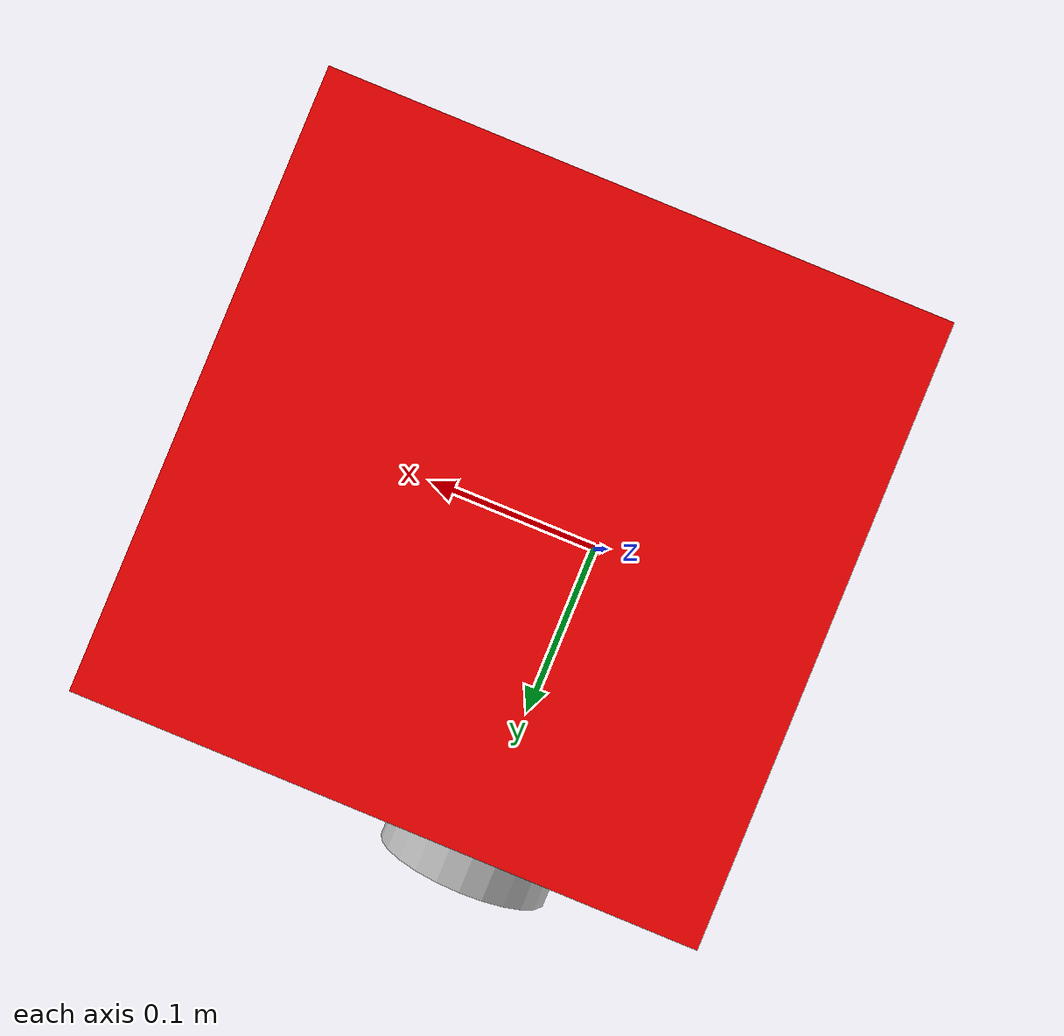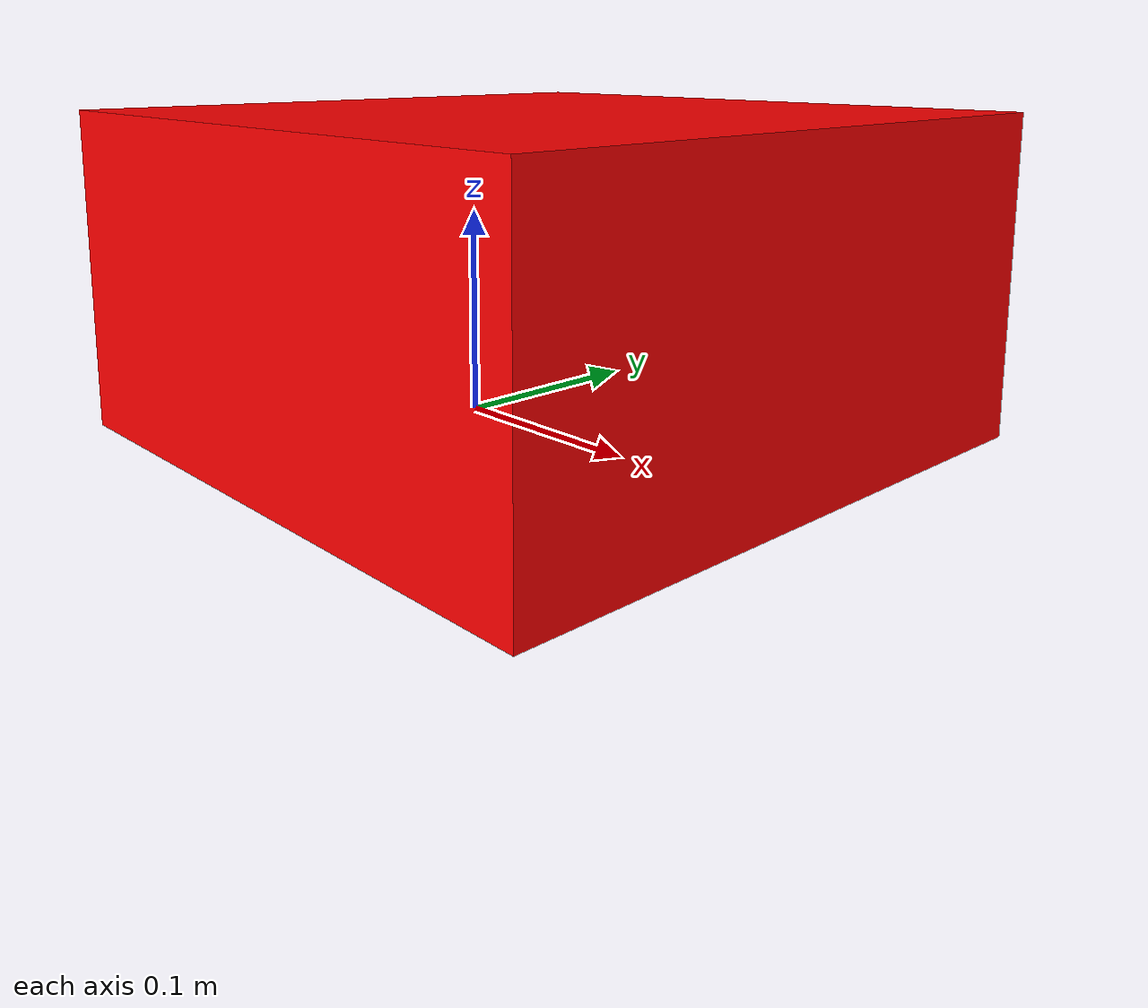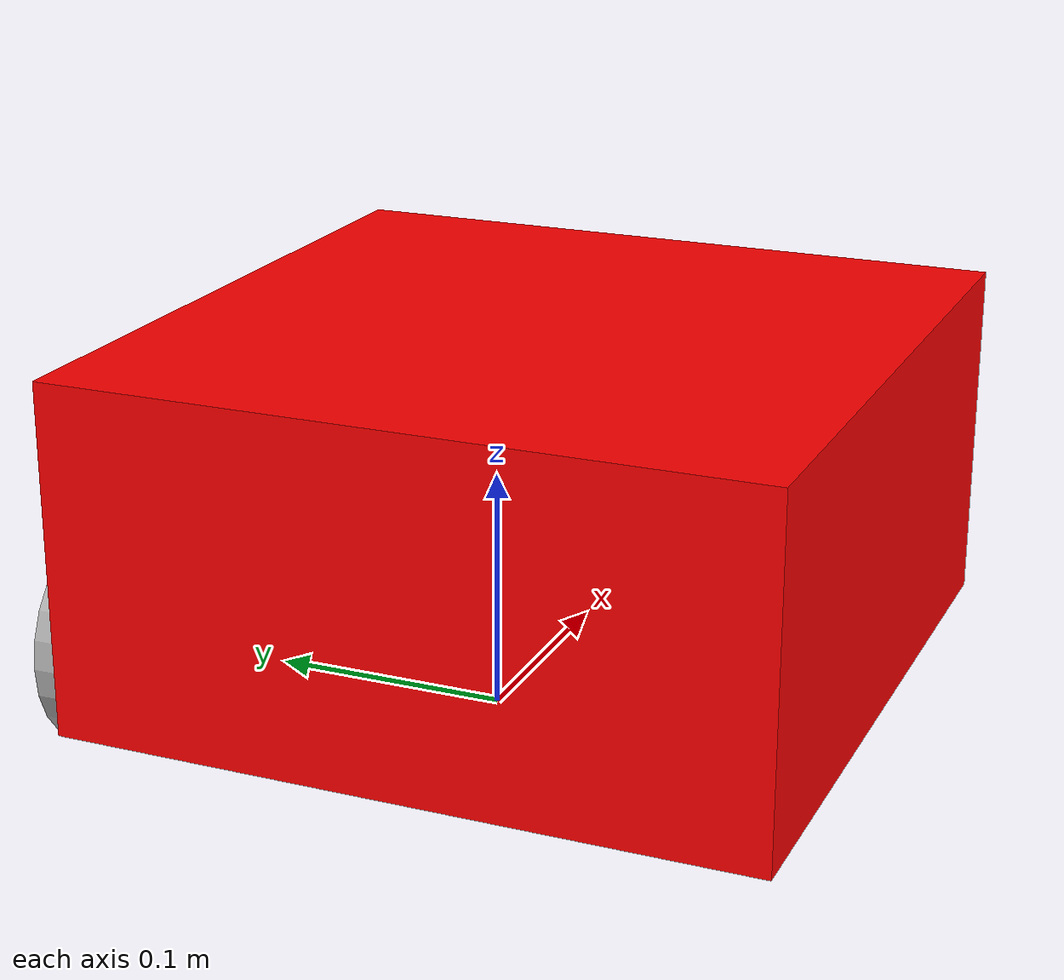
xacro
<?xml version="1.0"?>
<robot xmlns:xacro="http://www.ros.org/wiki/xacro"  name="robot">
    <material name = "white">
        <color rgba = "1 1 1 1"/>
    </material>
    <material name = "black">
        <color rgba = "0 0 0 1"/>
    </material>
    <material name = "red">
        <color rgba = "1 0 0 1"/>
    </material>
    <material name = "green">
        <color rgba = "0 1 0 1"/>
    </material><material name = "blue">
        <color rgba = "0 0 1 1"/>
    </material>
<!-- BASE LINK-->
    <link name  = "base_link">

    </link>

<!-- CHASSIS LINK-->
    <joint name = "chassis" type = "fixed">
        <parent link="base_link"/>
        <child link="chassis"/>
        <origin xyz="-0.1 0.0 0.0" rpy="0.0 0.0 0.0"/>
    </joint>

    <link name = "chassis">
        <visual>
            <origin xyz="0.15 0.0 0.075" rpy="0.0 0.0 0.0"/>

            <geometry>
                <box size="0.3 0.3 0.15"/>
            </geometry>
            <material name = "red" />
        </visual>
    </link>
<!--LEFT WHEEL LINK-->
    <joint name="left_wheel_link" type="continuous">
        <parent link="base_link"/>
        <child link="left_wheel"/>
        <origin xyz="0.0 0.175 0.0" rpy="-${pi/2} 0.0 0.0"/>
        <axis xyz="0.0 0.0 1.0"/>

    </joint>

    <link name="left_wheel">
        <visual>
            <geometry>
                <cylinder radius="0.05" length="0.04"/>
            </geometry>
            <material name="LightGrey">
                <color rgba="0.7 0.7 0.7 1.0"/>
            </material>
        </visual>
    </link>

</robot>
